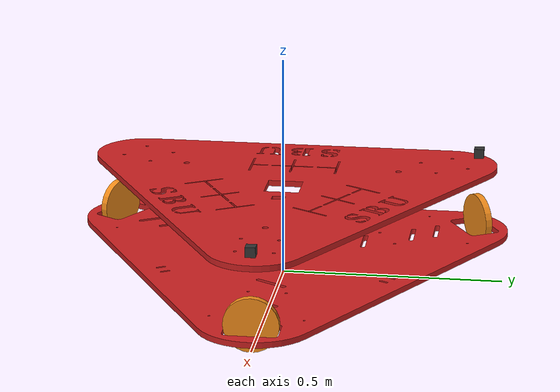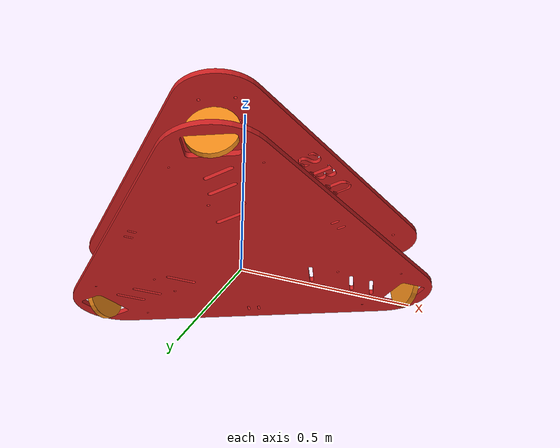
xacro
<?xml version="1.0"?>
<robot xmlns:xacro="http://www.ros.org/wiki/xacro" name="robot">

 <xacro:property name="M_PI" value="3.1415926535897931" />
 <xacro:property name="rob_scale" value="0.225"/>
 <xacro:property name="camera_z" value="${rob_scale}"/>
 <xacro:property name="base_z" value="${rob_scale*0.52}"/>

<xacro:property name="right_wheel_x" value="${rob_scale*2.195}"/>
<xacro:property name="right_wheel_y" value="${rob_scale*0}"/>
<xacro:property name="right_wheel_z" value="${rob_scale*0.27}"/>

<xacro:property name="right_wheel_length" value="${rob_scale*0.07}"/>
<xacro:property name="right_wheel_radius" value="${rob_scale*0.27}"/>
<xacro:property name="right_wheel_mass" value="${rob_scale}"/>

<xacro:property name="left_wheel_x" value="${rob_scale*-1.10000}"/>
<xacro:property name="left_wheel_y" value="${rob_scale*-1.9}"/>
<xacro:property name="left_wheel_z" value="${rob_scale*0.27}"/>

<xacro:property name="left_wheel_length" value="${rob_scale*0.07}"/>
<xacro:property name="left_wheel_radius" value="${rob_scale*0.27}"/>
<xacro:property name="left_wheel_mass" value="${rob_scale}"/>

<xacro:property name="third_wheel_x" value="${rob_scale*-1.10000}"/>
<xacro:property name="third_wheel_y" value="${rob_scale*1.9}"/>
<xacro:property name="third_wheel_z" value="${rob_scale*0.27}"/>

<xacro:property name="third_wheel_length" value="${rob_scale*0.07}"/>
<xacro:property name="third_wheel_radius" value="${rob_scale*0.27}"/>
<xacro:property name="third_wheel_mass" value="${rob_scale}"/>

<xacro:property name="sensor_size" value="${rob_scale*0.1}"/>

  <material name="black">
    <color rgba="0.0 0.0 0.0 1.0"/>
  </material>
  <material name="blue">
    <color rgba="0.203125 0.23828125 0.28515625 1.0"/>
  </material>
  <material name="green">
    <color rgba="0.0 0.8 0.0 1.0"/>
  </material>
  <material name="grey">
    <color rgba="0.2 0.2 0.2 1.0"/>
  </material>
  <material name="orange">
    <color rgba="1.0 0.423529411765 0.0392156862745 1.0"/>
  </material>
  <material name="brown">
    <color rgba="0.870588235294 0.811764705882 0.764705882353 1.0"/>
  </material>
  <material name="red">
    <color rgba="0.80078125 0.12890625 0.1328125 1.0"/>
  </material>
  <material name="white">
    <color rgba="1.0 1.0 1.0 1.0"/>
  </material>

    <gazebo reference="link_chassis">
    <material>Gazebo/Orange</material>
  </gazebo>
  <gazebo reference="link_left_wheel">
    <material>Gazebo/Orange</material>
  </gazebo>
  <gazebo reference="link_right_wheel">
    <material>Gazebo/Orange</material>
  </gazebo>
  <gazebo reference="link_third_wheel">
    <material>Gazebo/Orange</material>
  </gazebo>
  <gazebo reference="camera_link">
    <material>Gazebo/Blue</material>
  </gazebo>
    <gazebo reference="sonar_link">
    <material>Gazebo/Black</material>
  </gazebo>

  <gazebo>
  <plugin name="gazebo_ros_control" filename="libgazebo_ros_control.so">
  <robotNamespace>/robot</robotNamespace>
  </plugin>
</gazebo>

  <gazebo>
    <plugin filename="libgazebo_ros_diff_drive.so" name="differential_drive_controller">
      <alwaysOn>true</alwaysOn>
      <updateRate>20</updateRate>
      <leftJoint>joint_left_wheel</leftJoint>
      <rightJoint>joint_right_wheel</rightJoint>
      <wheelSeparation>0.4</wheelSeparation>
      <wheelDiameter>0.2</wheelDiameter>
      <torque>0.1</torque>
      <commandTopic>cmd_vel</commandTopic>
      <odometryTopic>odom</odometryTopic>
      <odometryFrame>odom</odometryFrame>
      <robotBaseFrame>link_chassis</robotBaseFrame>
    </plugin>
  </gazebo>

  <gazebo reference="sensor_laser">
    <sensor type="ray" name="head_hokuyo_sensor">
      <pose>0 0 0 0 0 0</pose>
      <visualize>false</visualize>
      <update_rate>20</update_rate>
      <ray>
        <scan>
          <horizontal>
            <samples>720</samples>
            <resolution>1</resolution>
            <min_angle>-1.570796</min_angle>
            <max_angle>1.570796</max_angle>
          </horizontal>
        </scan>
        <range>
          <min>0.10</min>
          <max>10.0</max>
          <resolution>0.01</resolution>
        </range>
        <noise>
          <type>gaussian</type>
          <mean>0.0</mean>
          <stddev>0.01</stddev>
        </noise>
      </ray>
      <plugin name="gazebo_ros_head_hokuyo_controller" filename="libgazebo_ros_laser.so">
        <topicName>/m2wr/laser/scan</topicName>
        <frameName>sensor_laser</frameName>
      </plugin>
    </sensor>
  </gazebo>

   <!--Interial macros-->
  <xacro:macro name="cylinder_inertia" params="m r h">
    <inertial>
      <mass value="${m}"/>
      <inertia ixx="${m*(3*r*r+h*h)/12}" ixy = "0" ixz = "0" iyy="${m*(3*r*r+h*h)/12}" iyz = "0" izz="${m*r*r/2}"/>
    </inertial>
  </xacro:macro>

  <xacro:macro name="box_inertia" params="m w h d">
    <inertial>
      <mass value="${m}"/>
      <inertia ixx="${m / 12.0 * (d*d + h*h)}" ixy="0.0" ixz="0.0" iyy="${m / 12.0 * (w*w + h*h)}" iyz="0.0" izz="${m / 12.0 * (w*w + d*d)}"/>
    </inertial>
  </xacro:macro>

  <xacro:macro name="camera_link" params="parent">

    <link name="camera_link">
	<origin xyz="${right_wheel_x} ${0} ${camera_z}" rpy="0 0 0" />
      <collision>
        <geometry>
          <box size="${sensor_size} ${sensor_size} ${sensor_size}" />

        </geometry>
      </collision>

      <visual>
        <geometry>
          <box size="${sensor_size} ${sensor_size} ${sensor_size}" />
        </geometry>
        <material name="grey">
            <color rgba="0.2 0.2 0.2 1.0"/>
        </material>
      </visual>

	<xacro:box_inertia m="0.001" w="${sensor_size}" h="${sensor_size}" d="${sensor_size}"/>

    </link>

    <joint name="camera_joint" type="fixed">
        <parent link="${parent}"/>
        <child link="camera_link"/>
        <origin xyz="${right_wheel_x} ${0} ${camera_z}" rpy="0 0 0" />
        <axis xyz="1 0 0" />
    </joint>

    <gazebo reference="camera_link">
      <sensor type="camera" name="camera_camera_sensor">
        <update_rate>30.0</update_rate>
        <camera>
          <pose>0.035 0 0.078 0 0 0</pose>
          <horizontal_fov>${85 * M_PI/180.0}</horizontal_fov>
          <image>
            <format>R8G8B8</format>
            <width>1020</width>
            <height>1020</height>
          </image>
          <clip>
            <near>0.01</near>
            <far>100</far>
          </clip>
        </camera>

        <plugin name="camera_camera_controller" filename="libgazebo_ros_camera.so">
          <alwaysOn>true</alwaysOn>
          <updateRate>0.0</updateRate>
          <cameraName>robot_sensor/camera</cameraName>
          <imageTopicName>image_raw</imageTopicName>
          <cameraInfoTopicName>camera_info</cameraInfoTopicName>
          <frameName>camera_link</frameName>
          <hackBaseline>0.07</hackBaseline>
          <distortionK1>0.0</distortionK1>
          <distortionK2>0.0</distortionK2>
          <distortionK3>0.0</distortionK3>
          <distortionT1>0.0</distortionT1>
          <distortionT2>0.0</distortionT2>
        </plugin>
      </sensor>
    </gazebo>
  </xacro:macro>

  <xacro:macro name="sonar_link" params="parent">

   <link name="sonar_link">
        <origin xyz="${third_wheel_x} ${third_wheel_y} ${camera_z}" rpy="0 0 ${M_PI/2}" />
      <collision>
        <geometry>
          <box size="${sensor_size} ${sensor_size} ${sensor_size}" />

        </geometry>
      </collision>

      <visual>
        <geometry>
          <box size="${sensor_size} ${sensor_size} ${sensor_size}" />
        </geometry>
        <material name="grey">
            <color rgba="0.2 0.2 0.2 1.0"/>
        </material>
      </visual>

	<xacro:box_inertia m="0.001" w="${sensor_size}" h="${sensor_size}" d="${sensor_size}"/>

  </link>

     <joint name="sonar_joint" type="fixed">
        <parent link="${parent}"/>
        <child link="sonar_link"/>
        <origin rpy="0 0 ${M_PI/2}" xyz="${third_wheel_x} ${third_wheel_y} ${camera_z}"/>
        <axis xyz="1 0 0" />
    </joint>

      <gazebo reference="sonar_link">
	    <sensor type="ray" name="sonar">
	  <pose>0.25 0 0 0 0 0</pose>
	  <update_rate>5</update_rate>
	  <ray>
	    <scan>
	      <horizontal>
		<samples>5</samples>
		<resolution>1.0</resolution>
		<min_angle>-0.25</min_angle>
		<max_angle>0.25</max_angle>
	      </horizontal>
	      <vertical>
		<samples>5</samples>
		<resolution>1</resolution>
		<min_angle>-0.25</min_angle>
		<max_angle>0.25</max_angle>
	      </vertical>
	    </scan>
	    <range>
	      <min>0.1</min>
	      <max>0.5</max>
	      <resolution>0.01</resolution>
	    </range>
	  </ray>
	  <plugin filename="libgazebo_ros_range.so" name="gazebo_ros_range">
	    <gaussianNoise>0.005</gaussianNoise>
	    <alwaysOn>true</alwaysOn>
	    <updateRate>5</updateRate>
	    <topicName>sonar</topicName>
	    <frameName>sonar_link</frameName>
	    <fov>0.5</fov>
	    <radiation>ultrasound</radiation>
	  </plugin>
	</sensor>
    </gazebo>

  </xacro:macro>

<link name="base_link">
    <inertial>
      <mass value="5"/>
      <origin xyz="0 0 ${base_z}" rpy="0 0 3.14"/>
      <inertia ixx="0.000738" ixy="0" ixz="0" iyy="0.000738" iyz="-0.000000" izz="0.001304"/>
    </inertial>
	<visual>
	<origin xyz="0 0 ${base_z}" rpy="0 0 3.14"/>
	<geometry>
        <mesh filename="package://rob_pkg/meshes/two_plate_s.dae" />
      </geometry>
      <material name="red"/>
    </visual>
    <collision >
	<origin xyz="0 0 ${base_z}" rpy="0 0 3.14"/>
      <geometry>
        <mesh filename="package://rob_pkg/meshes/two_plate_s.dae"   />
      </geometry>
    </collision>

  </link>

  <xacro:camera_link parent="base_link" />

  <xacro:sonar_link parent="base_link" />

    <link name="link_right_wheel">
      <mass value="${right_wheel_mass}"/>
      <origin rpy="0 ${M_PI/2} 0" xyz="${right_wheel_x} ${right_wheel_y} ${right_wheel_z}"/>
    <collision name="link_right_wheel_collision">
	<geometry>
	 <cylinder length="${right_wheel_length}" radius="${right_wheel_radius}" />
	</geometry>
	       <surface>
                <bounce>
                    <restitution_coefficient>.2</restitution_coefficient>
                </bounce>
                <friction>
                  <ode>
                      <mu>1000000</mu>
                      <mu2>100</mu2>
                      <fdir1>1 0 0</fdir1>
                      <slip1> 0</slip1>
                      <slip2>0</slip2>
                  </ode>
                </friction>
                <contact>
                  <ode/>
                </contact>
            </surface>
    </collision>
    <visual name="link_right_wheel_visual">
	<geometry>
	 <cylinder length="${right_wheel_length}" radius="${right_wheel_radius}" />
	</geometry>
    </visual>
 <xacro:cylinder_inertia m="${right_wheel_mass}" r="${right_wheel_radius}" h="${right_wheel_length}"/>
  </link>

  <joint name="joint_right_wheel" type="continuous">
	<origin rpy="0 ${M_PI/2} 0" xyz="${right_wheel_x} 0 ${right_wheel_z}"/>
    <child link="link_right_wheel"/>
    <parent link="base_link"/>
    <axis rpy="0 0 0" xyz="0 0 1"/>
  </joint>

<!-- Rear wheels transmission -->
<transmission name="transmission_right_wheel">
    <type>transmission_interface/SimpleTransmission</type>
    <joint name="joint_right_wheel">
        <hardwareInterface>hardware_interface/EffortJointInterface</hardwareInterface>
    </joint>
    <actuator name="motor_right_wheel">
        <hardwareInterface>hardware_interface/EffortJointInterface</hardwareInterface>
        <mechanicalReduction>1</mechanicalReduction>
    </actuator>
</transmission>

    <link name="link_left_wheel">
      <mass value="${left_wheel_mass}"/>
      <origin rpy="0 ${M_PI/2} 1.0472" xyz="${left_wheel_x} ${left_wheel_y} ${left_wheel_z}"/>
    <collision name="link_left_wheel_collision">
	<geometry>
	 <cylinder length="${left_wheel_length}" radius="${left_wheel_radius}" />
	</geometry>
    </collision>
    <visual name="link_left_wheel_visual">
	<geometry>
	 <cylinder length="${left_wheel_length}" radius="${left_wheel_radius}" />
	</geometry>
	       <surface>
        <bounce>
            <restitution_coefficient>.2</restitution_coefficient>
        </bounce>
        <friction>
          <ode>
              <mu>1000000</mu>
              <mu2>100</mu2>
              <fdir1>1 0 0</fdir1>
              <slip1> 0</slip1>
              <slip2>0</slip2>
          </ode>
        </friction>
        <contact>
          <ode/>
        </contact>
    </surface>
    </visual>
    <xacro:cylinder_inertia m="${right_wheel_mass}" r="${right_wheel_radius}" h="${right_wheel_length}"/>
  </link>

  <joint name="joint_left_wheel" type="continuous">
  <origin rpy="0 ${M_PI/2} 1.0472" xyz="${left_wheel_x} ${left_wheel_y} ${left_wheel_z}"/>
    <child link="link_left_wheel"/>
    <parent link="base_link"/>
    <axis rpy="0 0 0" xyz="0 0 1"/>
  </joint>

<!-- Rear wheels transmission -->
<transmission name="transmission_left_wheel">
    <type>transmission_interface/SimpleTransmission</type>
    <joint name="joint_left_wheel">
        <hardwareInterface>hardware_interface/EffortJointInterface</hardwareInterface>
    </joint>
    <actuator name="motor_left_wheel">
        <hardwareInterface>hardware_interface/EffortJointInterface</hardwareInterface>
        <mechanicalReduction>1</mechanicalReduction>
    </actuator>
</transmission>

    <link name="link_alo_wheel">
      <mass value="${left_wheel_mass}"/>
      <origin rpy="0 ${M_PI/2} 1.0472" xyz="${left_wheel_x} ${left_wheel_y} ${left_wheel_z}"/>
    <collision name="link_alo_wheel_collision">
	<geometry>
	 <cylinder length="${left_wheel_length}" radius="${left_wheel_radius}" />
	</geometry>
    </collision>
    <visual name="link_alo_wheel_visual">
	<geometry>
	 <cylinder length="${left_wheel_length}" radius="${left_wheel_radius}" />
	</geometry>
	       <surface>
        <bounce>
            <restitution_coefficient>.2</restitution_coefficient>
        </bounce>
        <friction>
          <ode>
              <mu>1000000</mu>
              <mu2>100</mu2>
              <fdir1>1 0 0</fdir1>
              <slip1> 0</slip1>
              <slip2>0</slip2>
          </ode>
        </friction>
        <contact>
          <ode/>
        </contact>
    </surface>
    </visual>
    <xacro:cylinder_inertia m="${right_wheel_mass}" r="${right_wheel_radius}" h="${right_wheel_length}"/>
  </link>

  <joint name="joint_alo_wheel" type="continuous">
  <origin rpy="0 ${M_PI/2} 1.0472" xyz="${left_wheel_x} ${left_wheel_y} ${left_wheel_z}"/>
    <child link="link_alo_wheel"/>
    <parent link="base_link"/>
    <axis rpy="0 0 0" xyz="0 0 1"/>
  </joint>

<!-- Rear wheels transmission -->
<transmission name="transmission_alo_wheel">
    <type>transmission_interface/SimpleTransmission</type>
    <joint name="joint_alo_wheel">
        <hardwareInterface>hardware_interface/EffortJointInterface</hardwareInterface>
    </joint>
    <actuator name="motor_alo_wheel">
        <hardwareInterface>hardware_interface/EffortJointInterface</hardwareInterface>
        <mechanicalReduction>1</mechanicalReduction>
    </actuator>
</transmission>

    <link name="link_third_wheel">
      <mass value="${third_wheel_mass}"/>
      <origin rpy="0 ${M_PI/2} 2.0944" xyz="${third_wheel_x} ${third_wheel_y} ${third_wheel_z}"/>
    <collision name="link_third_wheel_collision">
	<geometry>
	 <cylinder length="${third_wheel_length}" radius="${third_wheel_radius}" />
	</geometry>
    </collision>
    <visual name="link_third_wheel_visual">
	<geometry>
	 <cylinder length="${third_wheel_length}" radius="${third_wheel_radius}" />
	</geometry>
	<surface>
        <bounce>
            <restitution_coefficient>.2</restitution_coefficient>
        </bounce>
        <friction>
          <ode>
              <mu>1000000</mu>
              <mu2>100</mu2>
              <fdir1>1 0 0</fdir1>
              <slip1> 0</slip1>
              <slip2>0</slip2>
          </ode>
        </friction>
        <contact>
          <ode/>
        </contact>
    </surface>
    </visual>
    <xacro:cylinder_inertia m="${third_wheel_mass}" r="${right_wheel_radius}" h="${right_wheel_length}"/>
  </link>

  <joint name="joint_third_wheel" type="continuous">
  <origin rpy="0 ${M_PI/2} 2.0944" xyz="${third_wheel_x} ${third_wheel_y} ${third_wheel_z}"/>
    <child link="link_third_wheel"/>
    <parent link="base_link"/>
    <axis rpy="0 0 0" xyz="0 0 1"/>
  </joint>

<!-- Rear wheels transmission -->
<transmission name="transmission_third_wheel">
    <type>transmission_interface/SimpleTransmission</type>
    <joint name="joint_third_wheel">
        <hardwareInterface>hardware_interface/EffortJointInterface</hardwareInterface>
    </joint>
    <actuator name="motor_third_wheel">
        <hardwareInterface>hardware_interface/EffortJointInterface</hardwareInterface>
        <mechanicalReduction>1</mechanicalReduction>
    </actuator>
</transmission>

</robot>
